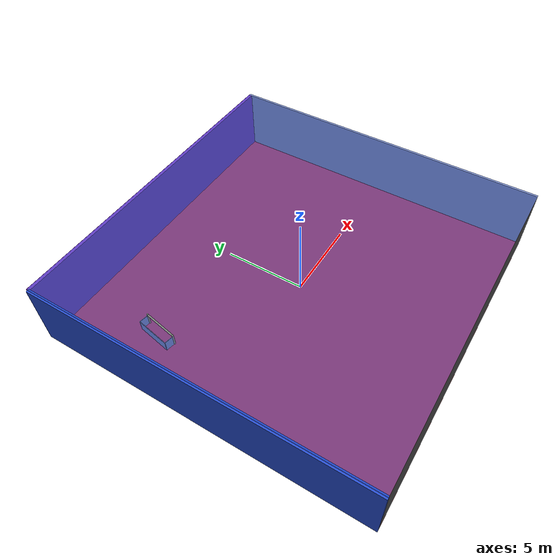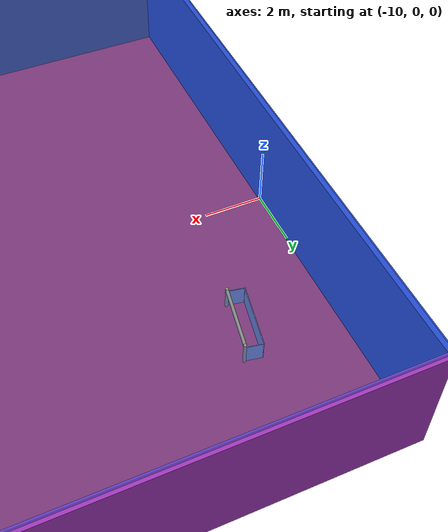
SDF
<sdf version="1.4">
 <world name="default">
  <physics type="ode">
   <max_step_size>0.001</max_step_size>
   <real_time_factor>1</real_time_factor>
   <real_time_update_rate>1000</real_time_update_rate>
   <gravity>0 0 -9.8</gravity>
  </physics>
  <scene><ambient>0.4 0.4 0.4 1</ambient><background>0.7 0.7 0.7 1</background><shadows>1</shadows></scene>
  <model name="Surrounding">
   <static>1</static>
   <link name="Ceiling">
    <collision name="Ceiling_Collision"><geometry><box><size>20 20 0.1</size></box></geometry></collision>
    <visual name="Ceiling_Visual">
     <geometry><box><size>20 20 0.1</size></box></geometry>
     <material>
      <script><uri>file://media/materials/scripts/gazebo.material</uri><name>Gazebo/BlueTransparent</name></script>
     </material>
    </visual>
    <pose>0 0 4.05 0 0 0</pose>
   </link>
   <link name="Wall_South">
    <collision name="Wall_South_Collision">
     <geometry><box><size>20 0 4</size></box></geometry>
     <pose>0 0 2 0 -0 0</pose>
    </collision>
    <visual name="Wall_South_Visual">
     <pose>0 0 2 0 -0 0</pose>
     <geometry><box><size>20 0 4</size></box></geometry>
     <material>
      <script><uri>file://media/materials/scripts/gazebo.material</uri><name>Gazebo/Road</name></script>
     </material>
    </visual>
    <velocity_decay><linear>0</linear><angular>0</angular></velocity_decay>
    <pose>0 -10 0 0 -0 0</pose>
   </link>
   <link name="Wall_East">
    <collision name="Wall_21_Collision">
     <geometry><box><size>20 0 4</size></box></geometry>
     <pose>0 0 2 0 -0 0</pose>
    </collision>
    <visual name="Wall_21_Visual">
     <pose>0 0 2 0 -0 0</pose>
     <geometry><box><size>20 0 4</size></box></geometry>
     <material>
      <script><uri>file://media/materials/scripts/gazebo.material</uri><name>Gazebo/PaintedWall</name></script>
     </material>
    </visual>
    <velocity_decay><linear>0</linear><angular>0</angular></velocity_decay>
    <pose>10 0 0 0 -0 1.5708</pose>
   </link>
   <link name="Wall_North">
    <collision name="Wall_22_Collision">
     <geometry><box><size>20 0.2 4</size></box></geometry>
     <pose>0 0 2 0 -0 0</pose>
    </collision>
    <visual name="Wall_22_Visual">
     <pose>0 0 2 0 -0 0</pose>
     <geometry><box><size>20 0.2 4</size></box></geometry>
     <material>
      <script><uri>file://media/materials/scripts/gazebo.material</uri><name>Gazebo/PurpleGlow</name></script>
     </material>
    </visual>
    <velocity_decay><linear>0</linear><angular>0</angular></velocity_decay>
    <pose>0 10 0 0 -0 0</pose>
   </link>
   <link name="Wall_West">
    <collision name="Wall_23_Collision">
     <geometry><box><size>20 0.2 4</size></box></geometry>
     <pose>0 0 2 0 -0 0</pose>
    </collision>
    <visual name="Wall_23_Visual">
     <pose>0 0 2 0 -0 0</pose>
     <geometry><box><size>20 0.2 4</size></box></geometry>
     <material>
      <script><uri>file://media/materials/scripts/gazebo.material</uri><name>Gazebo/BlueLaser</name></script>
     </material>
    </visual>
    <velocity_decay><linear>0</linear><angular>0</angular></velocity_decay>
    <pose>-10 0 0 0 0 -1.5708</pose>
   </link>
   <link name="Ground_link">
    <collision name="collision">
     <pose>0 0 .05 0 -0 0</pose>
     <geometry><box><size>20 20 0.1</size></box></geometry>
    </collision>
    <visual name="visual">
     <pose>0 0 .05 0 -0 0</pose>
     <geometry><box><size>20 20 0.1</size></box></geometry>
     <material>
      <script><uri>file://media/materials/scripts/gazebo.material</uri><name>Gazebo/RedGlow</name></script>
     </material>
    </visual>
   </link>
   <static>1</static>
  </model>
  <spherical_coordinates>
   <surface_model>EARTH_WGS84</surface_model>
   <latitude_deg>0</latitude_deg>
   <longitude_deg>0</longitude_deg>
   <elevation>0</elevation>
   <heading_deg>0</heading_deg>
  </spherical_coordinates>
  <light name="lightball_0" type="diffuse">
   <diffuse>0.8 0.8 0.8 1</diffuse>
   <specular>0.2 0.2 0.2 1</specular>
   <attenuation>
    <range>100</range>
    <constant>0.7</constant>
    <linear>0.01</linear>
    <quadratic>0.001</quadratic>
   </attenuation>
   <direction>-0.5 0.1 -0.9</direction>
   <pose>-4.02387082213 7.61347394511 1.70924006032 0 0 0</pose>
  </light>
  <light name="lightball_1" type="diffuse">
   <diffuse>0.8 0.8 0.8 1</diffuse>
   <specular>0.2 0.2 0.2 1</specular>
   <attenuation>
    <range>100</range>
    <constant>0.7</constant>
    <linear>0.01</linear>
    <quadratic>0.001</quadratic>
   </attenuation>
   <direction>-0.5 0.1 -0.9</direction>
   <pose>-1.04268994753 -6.62144208681 2.56027772367 0 0 0</pose>
  </light>
  <light name="lightball_2" type="diffuse">
   <diffuse>0.8 0.8 0.8 1</diffuse>
   <specular>0.2 0.2 0.2 1</specular>
   <attenuation>
    <range>100</range>
    <constant>0.7</constant>
    <linear>0.01</linear>
    <quadratic>0.001</quadratic>
   </attenuation>
   <direction>-0.5 0.1 -0.9</direction>
   <pose>7.67661426012 -2.17449119016 0.913197741239 0 0 0</pose>
  </light>
  <light name="lightball_3" type="diffuse">
   <diffuse>0.8 0.8 0.8 1</diffuse>
   <specular>0.2 0.2 0.2 1</specular>
   <attenuation>
    <range>100</range>
    <constant>0.7</constant>
    <linear>0.01</linear>
    <quadratic>0.001</quadratic>
   </attenuation>
   <direction>-0.5 0.1 -0.9</direction>
   <pose>-6.65880061841 -6.66916328708 2.42997413808 0 0 0</pose>
  </light>
  <light name="lightball_4" type="diffuse">
   <diffuse>0.8 0.8 0.8 1</diffuse>
   <specular>0.2 0.2 0.2 1</specular>
   <attenuation>
    <range>100</range>
    <constant>0.7</constant>
    <linear>0.01</linear>
    <quadratic>0.001</quadratic>
   </attenuation>
   <direction>-0.5 0.1 -0.9</direction>
   <pose>-7.57218350993 1.17087034784 1.22447456439 0 0 0</pose>
  </light>
  <light name="lightball_5" type="diffuse">
   <diffuse>0.8 0.8 0.8 1</diffuse>
   <specular>0.2 0.2 0.2 1</specular>
   <attenuation>
    <range>100</range>
    <constant>0.7</constant>
    <linear>0.01</linear>
    <quadratic>0.001</quadratic>
   </attenuation>
   <direction>-0.5 0.1 -0.9</direction>
   <pose>4.66526876767 -5.29120957651 3.64655629252 0 0 0</pose>
  </light>
  <light name="lightball_6" type="diffuse">
   <diffuse>0.8 0.8 0.8 1</diffuse>
   <specular>0.2 0.2 0.2 1</specular>
   <attenuation>
    <range>100</range>
    <constant>0.7</constant>
    <linear>0.01</linear>
    <quadratic>0.001</quadratic>
   </attenuation>
   <direction>-0.5 0.1 -0.9</direction>
   <pose>6.91229369041 -0.86687919281 2.40244459393 0 0 0</pose>
  </light>
  <light name="lightball_7" type="diffuse">
   <diffuse>0.8 0.8 0.8 1</diffuse>
   <specular>0.2 0.2 0.2 1</specular>
   <attenuation>
    <range>100</range>
    <constant>0.7</constant>
    <linear>0.01</linear>
    <quadratic>0.001</quadratic>
   </attenuation>
   <direction>-0.5 0.1 -0.9</direction>
   <pose>-1.92428933782 -7.33895854126 3.83545297472 0 0 0</pose>
  </light>
  <light name="lightball_8" type="diffuse">
   <diffuse>0.8 0.8 0.8 1</diffuse>
   <specular>0.2 0.2 0.2 1</specular>
   <attenuation>
    <range>100</range>
    <constant>0.7</constant>
    <linear>0.01</linear>
    <quadratic>0.001</quadratic>
   </attenuation>
   <direction>-0.5 0.1 -0.9</direction>
   <pose>-7.5932826561 -2.25950619703 2.76402208521 0 0 0</pose>
  </light>
  <light name="lightball_9" type="diffuse">
   <diffuse>0.8 0.8 0.8 1</diffuse>
   <specular>0.2 0.2 0.2 1</specular>
   <attenuation>
    <range>100</range>
    <constant>0.7</constant>
    <linear>0.01</linear>
    <quadratic>0.001</quadratic>
   </attenuation>
   <direction>-0.5 0.1 -0.9</direction>
   <pose>3.82048302768 0.0226430269534 3.04500407912 0 0 0</pose>
  </light>
  <light name="lightball_10" type="diffuse">
   <diffuse>0.8 0.8 0.8 1</diffuse>
   <specular>0.2 0.2 0.2 1</specular>
   <attenuation>
    <range>100</range>
    <constant>0.7</constant>
    <linear>0.01</linear>
    <quadratic>0.001</quadratic>
   </attenuation>
   <direction>-0.5 0.1 -0.9</direction>
   <pose>-3.00420118345 3.08439732955 2.35925501579 0 0 0</pose>
  </light>
  <light name="lightball_11" type="diffuse">
   <diffuse>0.8 0.8 0.8 1</diffuse>
   <specular>0.2 0.2 0.2 1</specular>
   <attenuation>
    <range>100</range>
    <constant>0.7</constant>
    <linear>0.01</linear>
    <quadratic>0.001</quadratic>
   </attenuation>
   <direction>-0.5 0.1 -0.9</direction>
   <pose>-2.38175472466 -0.147859731001 2.12981018311 0 0 0</pose>
  </light>
  <light name="lightball_12" type="diffuse">
   <diffuse>0.8 0.8 0.8 1</diffuse>
   <specular>0.2 0.2 0.2 1</specular>
   <attenuation>
    <range>100</range>
    <constant>0.7</constant>
    <linear>0.01</linear>
    <quadratic>0.001</quadratic>
   </attenuation>
   <direction>-0.5 0.1 -0.9</direction>
   <pose>3.09546410408 -0.17857257401 2.4248979723 0 0 0</pose>
  </light>
  <include>
   <uri>model://robocup_3Dsim_goal</uri>
   <pose>-6.79936401222 4.81251254679 0 0 0 2.95738725068</pose>
  </include>
 </world>
</sdf>

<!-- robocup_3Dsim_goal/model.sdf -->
<sdf version="1.5">
  <model name="robocup_3d_goal">
    <static>true</static>
    <link name="left_post">
      <pose>0 1.05 0.45 0 0 0</pose>
      <collision name="collision">
        <geometry>
          <cylinder>
            <radius>0.05</radius>
            <length>0.9</length>
          </cylinder>
        </geometry>
      </collision>
      <visual name="visual">
        <geometry>
          <cylinder>
            <radius>0.05</radius>
            <length>0.9</length>
          </cylinder>
        </geometry>
        <material>
          <script>
            <uri>file://media/materials/scripts/gazebo.material</uri>
            <name>Gazebo/ZincYellow</name>
          </script>
        </material>
      </visual>
    </link>
    <link name="left_support_horiz_lower">
      <pose>0.30 1.05 0.01 0 0 0</pose>
      <collision name="collision">
        <geometry>
          <box>
            <size>0.50 0.02 0.02</size>
          </box>
        </geometry>
      </collision>
      <visual name="visual">
        <geometry>
          <box>
            <size>0.50 0.02 0.02</size>
          </box>
        </geometry>
        <material>
          <script>
            <uri>file://media/materials/scripts/gazebo.material</uri>
            <name>Gazebo/White</name>
          </script>
        </material>
      </visual>
    </link>
    <link name="left_support_horiz_upper">
      <pose>0.30 1.05 0.79 0 0 0</pose>
      <collision name="collision">
        <geometry>
          <box>
            <size>0.50 0.02 0.02</size>
          </box>
        </geometry>
      </collision>
      <visual name="visual">
        <geometry>
          <box>
            <size>0.50 0.02 0.02</size>
          </box>
        </geometry>
        <material>
          <script>
            <uri>file://media/materials/scripts/gazebo.material</uri>
            <name>Gazebo/White</name>
          </script>
        </material>
      </visual>
    </link>
    <link name="left_support_vertical">
      <pose>0.56 1.05 0.4 0 1.5708 0</pose>
      <collision name="collision">
        <geometry>
          <box>
            <size>0.80 0.02 0.02</size>
          </box>
        </geometry>
      </collision>
      <visual name="visual">
        <geometry>
          <box>
            <size>0.80 0.02 0.02</size>
          </box>
        </geometry>
        <material>
          <script>
            <uri>file://media/materials/scripts/gazebo.material</uri>
            <name>Gazebo/White</name>
          </script>
        </material>
      </visual>
    </link>
    <link name="right_support_horiz_lower">
      <pose>0.30 -1.05 0.01 0 0 0</pose>
      <collision name="collision">
        <geometry>
          <box>
            <size>0.50 0.02 0.02</size>
          </box>
        </geometry>
      </collision>
      <visual name="visual">
        <geometry>
          <box>
            <size>0.50 0.02 0.02</size>
          </box>
        </geometry>
        <material>
          <script>
            <uri>file://media/materials/scripts/gazebo.material</uri>
            <name>Gazebo/White</name>
          </script>
        </material>
      </visual>
    </link>
    <link name="right_support_horiz_upper">
      <pose>0.30 -1.05 0.79 0 0 0</pose>
      <collision name="collision">
        <geometry>
          <box>
            <size>0.50 0.02 0.02</size>
          </box>
        </geometry>
      </collision>
      <visual name="visual">
        <geometry>
          <box>
            <size>0.50 0.02 0.02</size>
          </box>
        </geometry>
        <material>
          <script>
            <uri>file://media/materials/scripts/gazebo.material</uri>
            <name>Gazebo/White</name>
          </script>
        </material>
      </visual>
    </link>
    <link name="right_support_vertical">
      <pose>0.56 -1.05 0.4 0 1.5708 0</pose>
      <collision name="collision">
        <geometry>
          <box>
            <size>0.80 0.02 0.02</size>
          </box>
        </geometry>
      </collision>
      <visual name="visual">
        <geometry>
          <box>
            <size>0.80 0.02 0.02</size>
          </box>
        </geometry>
        <material>
          <script>
            <uri>file://media/materials/scripts/gazebo.material</uri>
            <name>Gazebo/White</name>
          </script>
        </material>
      </visual>
    </link>
    <link name="center_support_horiz_lower">
      <pose>0.56 0 0.01 0 1.5708 0</pose>
      <collision name="collision">
        <geometry>
          <box>
            <size>0.02 2.08 0.02</size>
          </box>
        </geometry>
      </collision>
      <visual name="visual">
        <geometry>
          <box>
            <size>0.02 2.08 0.02</size>
          </box>
        </geometry>
        <material>
          <script>
            <uri>file://media/materials/scripts/gazebo.material</uri>
            <name>Gazebo/White</name>
          </script>
        </material>
      </visual>
    </link>
    <link name="center_support_horiz_upper">
      <pose>0.56 0 0.79 0 1.5708 0</pose>
      <collision name="collision">
        <geometry>
          <box>
            <size>0.02 2.08 0.02</size>
          </box>
        </geometry>
      </collision>
      <visual name="visual">
        <geometry>
          <box>
            <size>0.02 2.08 0.02</size>
          </box>
        </geometry>
        <material>
          <script>
            <uri>file://media/materials/scripts/gazebo.material</uri>
            <name>Gazebo/White</name>
          </script>
        </material>
      </visual>
    </link>
    <link name="right_post">
      <pose>0 -1.05 0.45 0 0 0</pose>
      <collision name="collision">
        <geometry>
          <cylinder>
            <radius>0.05</radius>
            <length>0.9</length>
          </cylinder>
        </geometry>
      </collision>
      <visual name="visual">
        <geometry>
          <cylinder>
            <radius>0.05</radius>
            <length>0.9</length>
          </cylinder>
        </geometry>
        <material>
          <script>
            <uri>file://media/materials/scripts/gazebo.material</uri>
            <name>Gazebo/ZincYellow</name>
          </script>
        </material>
      </visual>
    </link>
    <link name="crossbar">
      <pose>0 0 0.85 1.57 1.57 0</pose>
      <collision name="collision">
        <geometry>
          <cylinder>
            <radius>0.05</radius>
            <length>2.0</length>
          </cylinder>
        </geometry>
      </collision>
      <visual name="visual">
        <geometry>
          <cylinder>
            <radius>0.05</radius>
            <length>2.0</length>
          </cylinder>
        </geometry>
        <material>
          <script>
            <uri>file://media/materials/scripts/gazebo.material</uri>
            <name>Gazebo/ZincYellow</name>
          </script>
        </material>
      </visual>
    </link>
    <link name="center_net">
      <pose>0.56 0 0.40 0 0 0</pose>
      <collision name="collision">
        <geometry>
          <box>
            <size>0.01 2.1 0.80</size>
          </box>
        </geometry>
      </collision>
      <visual name="visual">
        <geometry>
          <box>
            <size>0.01 2.1 0.80</size>
          </box>
        </geometry>
        <material>
          <script>
            <uri>model://../model_source/models/robocup09_spl_field/materials/scripts/</uri>
            <uri>model://../model_source/models/robocup09_spl_field/materials/textures/</uri>
            <name>RoboCup/Net</name>
          </script>
        </material>
      </visual>
    </link>
    <link name="left_net">
      <pose>0.30 1.05 0.40 0 0 0</pose>
      <collision name="collision">
        <geometry>
          <box>
            <size>0.50 0.01 0.76</size>
          </box>
        </geometry>
      </collision>
      <visual name="visual">
        <geometry>
          <box>
            <size>0.50 0.01 0.76</size>
          </box>
        </geometry>
        <material>
          <script>
            <uri>model://../model_source/models/robocup09_spl_field/materials/scripts/</uri>
            <uri>model://../model_source/models/robocup09_spl_field/materials/textures/</uri>
            <name>RoboCup/Net</name>
          </script>
        </material>
      </visual>
    </link>
    <link name="right_net">
      <pose>0.30 -1.05 0.40 0 0 0</pose>
      <collision name="collision">
        <geometry>
          <box>
            <size>0.50 0.01 0.76</size>
          </box>
        </geometry>
      </collision>
      <visual name="visual">
        <geometry>
          <box>
            <size>0.50 0.01 0.76</size>
          </box>
        </geometry>
        <material>
          <script>
            <uri>model://../model_source/models/robocup09_spl_field/materials/scripts/</uri>
            <uri>model://../model_source/models/robocup09_spl_field/materials/textures/</uri>
            <name>RoboCup/Net</name>
          </script>
        </material>
      </visual>
    </link>
  </model>
</sdf>
